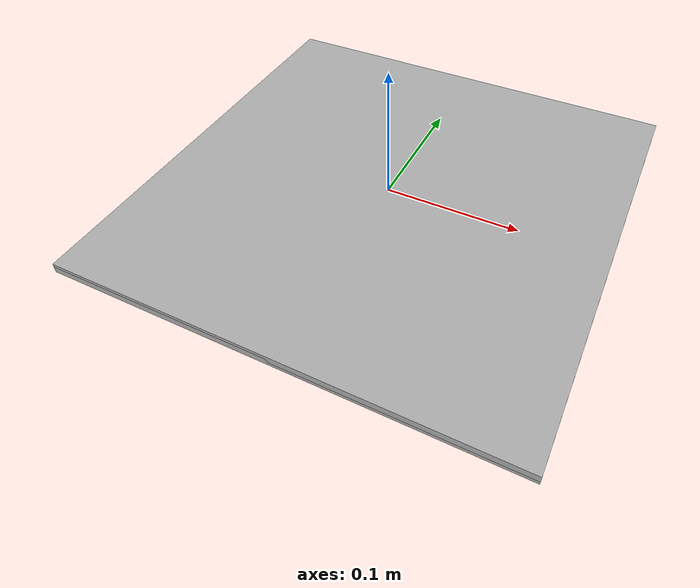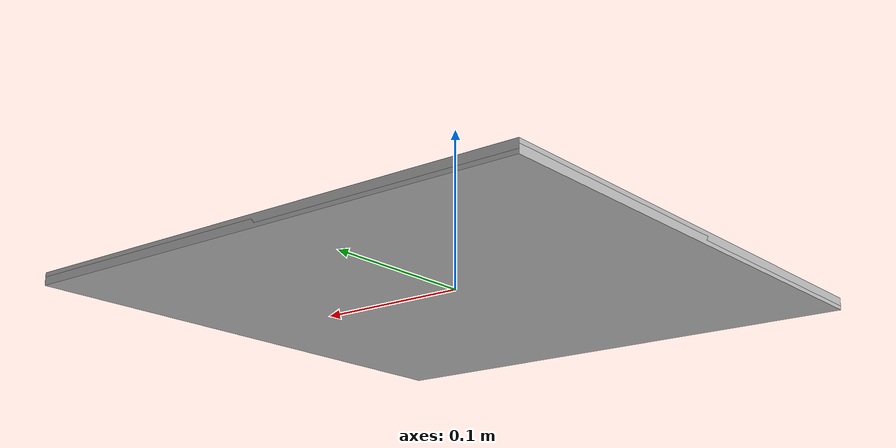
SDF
<?xml version="1.0" ?>
<sdf version="1.5">
  <model name="Aruco tag10">
    <static>true</static>
    <link name="robot_link">
      <visual name="front_visual">
        <geometry>
          <box>
            <size>0.33 0.33 0.005</size>
          </box>
        </geometry>
        <material>
          <script>
            <uri>file://tag_10/materials/scripts/</uri>
            <uri>file://tag_10/materials/textures/</uri>
            <name>Aruco/tag10</name>
          </script>
        </material>
      </visual>
      <visual name='rear_visual'>
        <pose frame=''>0 0 -0.0025 0 -0 3.1416</pose>
        <geometry>
          <box>
            <size>0.33 0.33 0.005</size>
          </box>
        </geometry>
        <material>
          <script>
            <uri>file://tag_10/materials/scripts/</uri>
            <uri>file://tag_10/materials/textures/</uri>
            <name>Aruco/tag10</name>
          </script>
        </material>
      </visual>
      <self_collide>0</self_collide>
      <enable_wind>0</enable_wind>
      <kinematic>0</kinematic>
    </link>
  </model>
</sdf>
